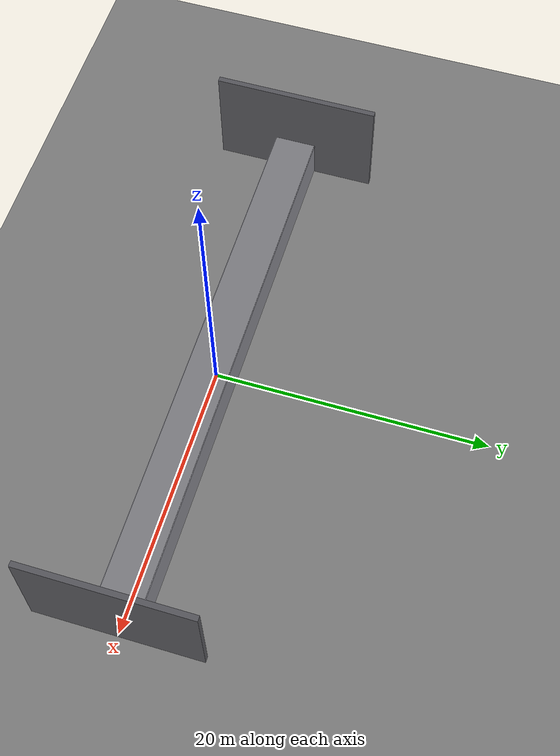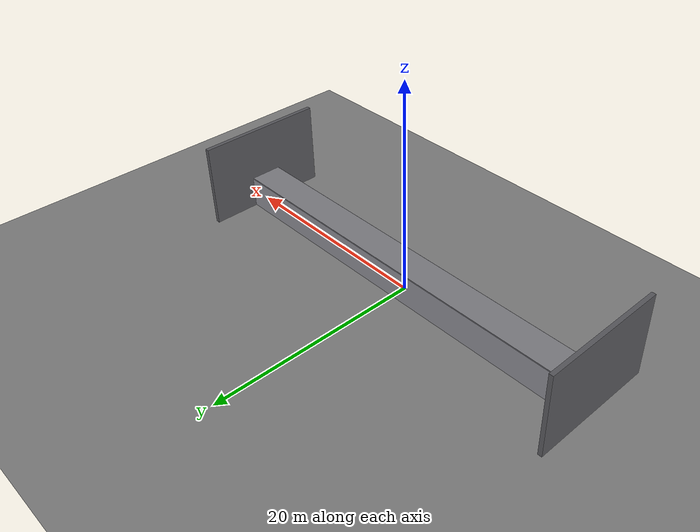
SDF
<?xml version="1.0"?>
<!--
  隧道病害巡检仿真世界
  - 简易矩形隧道走廊: 左墙 + 右墙 + 顶板, 净宽 ~2.5m, 净高 ~2.75m
  - 走廊内放置红/绿/蓝色块与圆柱, 为相机、16线雷达提供丰富特征(供后续 SLAM / 病害检测)
  - 注: 地面与阳光显式定义, 不依赖 model:// 资源路径
-->
<sdf version="1.9">
  <world name="tunnel_world">

    <physics name="default_physics" default="true" type="dart">
      <gravity>0 0 -9.8</gravity>
      <max_step_size>0.002</max_step_size>
      <real_time_factor>1</real_time_factor>
      <real_time_update_rate>500</real_time_update_rate>
    </physics>

    <scene>
      <ambient>0.6 0.6 0.6</ambient>
      <background>0.2 0.2 0.2</background>
      <shadows>true</shadows>
    </scene>

    <plugin filename="gz-sim-sensors-system" name="gz::sim::systems::Sensors">
      <render_engine>ogre2</render_engine>
    </plugin>

    <!-- 关键: world 有 Sensors 等系统插件时, gz-sim 不再自动加载默认系统集(含 Physics)。
         必须显式加 physics-system, 否则物理引擎不创建、实体静止、DiffDrive 永不发 odom。 -->
    <plugin filename="gz-sim-physics-system" name="gz::sim::systems::Physics"/>

    <!-- 太阳(方向光) -->
    <light type="directional" name="sun">
      <cast_shadows>true</cast_shadows>
      <pose>0 0 10 0 0 0</pose>
      <diffuse>0.35 0.35 0.35</diffuse>
      <specular>0.05 0.05 0.05</specular>
      <direction>-0.5 0.1 -0.9</direction>
    </light>

    <!-- 隧道内点光源: 沿隧道每 10m 一盏(z=2.4, range 16)。
         封闭隧道顶挡住太阳直射, 仅靠 scene ambient 会让墙面均匀灰、病害贴图看不清
         (v11-v13t 对比度 std 掉到 10~29 的根源)。点光源制造亮池+暗缝,
         病害 PBR 贴图才能看清。v9/v10 有这组灯, std≈40。 -->
    <light type="point" name="tunnel_light_1">
      <cast_shadows>false</cast_shadows>
      <pose>-15 0 2.4 0 0 0</pose>
      <diffuse>0.5 0.5 0.5</diffuse>
      <specular>0.05 0.05 0.05</specular>
      <attenuation>
        <range>16</range>
        <constant>1.0</constant>
        <linear>0.05</linear>
        <quadratic>0.005</quadratic>
      </attenuation>
      <intensity>1.0</intensity>
    </light>
    <light type="point" name="tunnel_light_2">
      <cast_shadows>false</cast_shadows>
      <pose>-5 0 2.4 0 0 0</pose>
      <diffuse>0.5 0.5 0.5</diffuse>
      <specular>0.05 0.05 0.05</specular>
      <attenuation>
        <range>16</range>
        <constant>1.0</constant>
        <linear>0.05</linear>
        <quadratic>0.005</quadratic>
      </attenuation>
      <intensity>1.0</intensity>
    </light>
    <light type="point" name="tunnel_light_3">
      <cast_shadows>false</cast_shadows>
      <pose>5 0 2.4 0 0 0</pose>
      <diffuse>0.5 0.5 0.5</diffuse>
      <specular>0.05 0.05 0.05</specular>
      <attenuation>
        <range>16</range>
        <constant>1.0</constant>
        <linear>0.05</linear>
        <quadratic>0.005</quadratic>
      </attenuation>
      <intensity>1.0</intensity>
    </light>
    <light type="point" name="tunnel_light_4">
      <cast_shadows>false</cast_shadows>
      <pose>15 0 2.4 0 0 0</pose>
      <diffuse>0.5 0.5 0.5</diffuse>
      <specular>0.05 0.05 0.05</specular>
      <attenuation>
        <range>16</range>
        <constant>1.0</constant>
        <linear>0.05</linear>
        <quadratic>0.005</quadratic>
      </attenuation>
      <intensity>1.0</intensity>
    </light>

    <!-- 地面 -->
    <model name="ground_plane">
      <static>true</static>
      <link name="ground">
        <collision name="ground_collision">
          <geometry>
            <plane><normal>0 0 1</normal><size>100 100</size></plane>
          </geometry>
        </collision>
        <visual name="ground_visual">
          <geometry>
            <plane><normal>0 0 1</normal><size>100 100</size></plane>
          </geometry>
          <material>
  <diffuse>0.50 0.50 0.50 1</diffuse>
  <emissive>0.08 0.08 0.08 1</emissive><ambient>0.5 0.5 0.5</ambient></material>
        </visual>
      </link>
    </model>

    <!-- ============ 隧道左墙 ============ -->
    <model name="tunnel_left_wall">
      <static>true</static>
      <pose>0 1.4 1.5 0 0 0</pose>
      <link name="wall">
        <visual name="wall_visual">
          <geometry><box><size>40 0.3 3</size></box></geometry>
          <material>
  <diffuse>0.55 0.55 0.58 1</diffuse>
  <emissive>0.09 0.09 0.09 1</emissive><ambient>0.55 0.55 0.58</ambient></material>
        </visual>
        <collision name="wall_collision">
          <geometry><box><size>40 0.3 3</size></box></geometry>
        </collision>
      </link>
    </model>

    <!-- ============ 隧道右墙 ============ -->
    <model name="tunnel_right_wall">
      <static>true</static>
      <pose>0 -1.4 1.5 0 0 0</pose>
      <link name="wall">
        <visual name="wall_visual">
          <geometry><box><size>40 0.3 3</size></box></geometry>
          <material>
  <diffuse>0.55 0.55 0.58 1</diffuse>
  <emissive>0.09 0.09 0.09 1</emissive><ambient>0.55 0.55 0.58</ambient></material>
        </visual>
        <collision name="wall_collision">
          <geometry><box><size>40 0.3 3</size></box></geometry>
        </collision>
      </link>
    </model>

    <!-- ============ 隧道顶板 (拱顶近似) ============ -->
    <model name="tunnel_ceiling">
      <static>true</static>
      <pose>0 0 2.9 0 0 0</pose>
      <link name="ceiling">
        <visual name="ceiling_visual">
          <geometry><box><size>40 3 0.3</size></box></geometry>
          <material>
  <diffuse>0.50 0.50 0.52 1</diffuse>
  <emissive>0.08 0.08 0.08 1</emissive><ambient>0.5 0.5 0.52</ambient></material>
        </visual>
        <collision name="ceiling_collision">
          <geometry><box><size>40 3 0.3</size></box></geometry>
        </collision>
      </link>
    </model>

    <!-- ============ 钢轨 (轨道病害载体, 标准轨距 1435mm, 轨顶 z≈0.15) ============ -->
    <model name="rail_left">
      <static>true</static>
      <pose>0 0.717 0.075 0 0 0</pose>
      <link name="rail">
        <visual name="visual">
          <geometry><box><size>40 0.09 0.15</size></box></geometry>
          <material>
            <diffuse>0.72 0.72 0.75 1</diffuse>
            <emissive>0.12 0.12 0.12 1</emissive>
            <ambient>0.72 0.72 0.75</ambient>
          </material>
        </visual>
        <collision name="collision">
          <geometry><box><size>40 0.09 0.15</size></box></geometry>
        </collision>
      </link>
    </model>
    <model name="rail_right">
      <static>true</static>
      <pose>0 -0.717 0.075 0 0 0</pose>
      <link name="rail">
        <visual name="visual">
          <geometry><box><size>40 0.09 0.15</size></box></geometry>
          <material>
            <diffuse>0.72 0.72 0.75 1</diffuse>
            <emissive>0.12 0.12 0.12 1</emissive>
            <ambient>0.72 0.72 0.75</ambient>
          </material>
        </visual>
        <collision name="collision">
          <geometry><box><size>40 0.09 0.15</size></box></geometry>
        </collision>
      </link>
    </model>

    <!-- ============ 隧道端墙 (封住 x=±20 开口, 避免相机看到隧道外天空致盲白屏) ============ -->
    <model name="tunnel_end_wall_far">
      <static>true</static>
      <pose>20 0 3.5 0 0 0</pose>
      <link name="wall">
        <visual name="visual">
          <geometry><box><size>0.4 12 9</size></box></geometry>
          <material>
            <diffuse>0.35 0.35 0.37 1</diffuse>
            <emissive>0.06 0.06 0.06 1</emissive>
            <ambient>0.35 0.35 0.37</ambient>
          </material>
        </visual>
        <collision name="collision">
          <geometry><box><size>0.4 12 9</size></box></geometry>
        </collision>
      </link>
    </model>
    <model name="tunnel_end_wall_near">
      <static>true</static>
      <pose>-20 0 3.5 0 0 0</pose>
      <link name="wall">
        <visual name="visual">
          <geometry><box><size>0.4 12 9</size></box></geometry>
          <material>
            <diffuse>0.35 0.35 0.37 1</diffuse>
            <emissive>0.06 0.06 0.06 1</emissive>
            <ambient>0.35 0.35 0.37</ambient>
          </material>
        </visual>
        <collision name="collision">
          <geometry><box><size>0.4 12 9</size></box></geometry>
        </collision>
      </link>
    </model>

    <!-- ============ 特征物 (SLAM / 病害检测用) ============ -->
    <model name="red_box">
      <static>true</static>
      <pose>3 0.8 0.25 0 0 0</pose>
      <link name="body">
        <visual name="visual">
          <geometry><box><size>0.8 0.8 0.5</size></box></geometry>
          <material>
  <diffuse>0.80 0.20 0.20 1</diffuse>
  <emissive>0.32 0.08 0.08 1</emissive><ambient>0.8 0.2 0.2</ambient></material>
        </visual>
        <collision name="collision">
          <geometry><box><size>0.8 0.8 0.5</size></box></geometry>
        </collision>
      </link>
    </model>

    <model name="green_box">
      <static>true</static>
      <pose>6 -0.8 0.15 0 0 0.4</pose>
      <link name="body">
        <visual name="visual">
          <geometry><box><size>0.6 0.6 0.3</size></box></geometry>
          <material>
  <diffuse>0.20 0.80 0.20 1</diffuse>
  <emissive>0.08 0.32 0.08 1</emissive><ambient>0.2 0.8 0.2</ambient></material>
        </visual>
        <collision name="collision">
          <geometry><box><size>0.6 0.6 0.3</size></box></geometry>
        </collision>
      </link>
    </model>

    <model name="blue_cylinder">
      <static>true</static>
      <pose>9 0.8 0.5 0 0 0</pose>
      <link name="body">
        <visual name="visual">
          <geometry><cylinder><radius>0.3</radius><length>1.0</length></cylinder></geometry>
          <material>
  <diffuse>0.20 0.20 0.80 1</diffuse>
  <emissive>0.08 0.08 0.32 1</emissive><ambient>0.2 0.2 0.8</ambient></material>
        </visual>
        <collision name="collision">
          <geometry><cylinder><radius>0.3</radius><length>1.0</length></cylinder></geometry>
        </collision>
      </link>
    </model>

    <model name="yellow_box">
      <static>true</static>
      <pose>12 -0.8 0.35 0 0 0.2</pose>
      <link name="body">
        <visual name="visual">
          <geometry><box><size>0.9 0.6 0.7</size></box></geometry>
          <material>
  <diffuse>0.90 0.90 0.20 1</diffuse>
  <emissive>0.36 0.36 0.08 1</emissive><ambient>0.9 0.9 0.2</ambient></material>
        </visual>
        <collision name="collision">
          <geometry><box><size>0.9 0.6 0.7</size></box></geometry>
        </collision>
      </link>
    </model>

  <model name='inspection_robot'>
    <pose>0 0 0.20 0 0 0</pose>
    <link name='base_link'>
      <inertial>
        <pose>0.0025433526011560698 0 0.018612716763005781 0 0 0</pose>
        <mass>8.6500000000000004</mass>
        <inertia>
          <ixx>0.1442233526011561</ixx>
          <ixy>0</ixy>
          <ixz>-0.001790520231213873</ixz>
          <iyy>0.20900739884393069</iyy>
          <iyz>0</iyz>
          <izz>0.22598404624277449</izz>
        </inertia>
      </inertial>
      <collision name='base_link_collision'>
        <pose>0 0 0 0 0 0</pose>
        <geometry>
          <box>
            <size>0.45000000000000001 0.34999999999999998 0.17999999999999999</size>
          </box>
        </geometry>
      </collision>
      <collision name='base_link_fixed_joint_lump__camera_link_collision_1'>
        <pose>0.22 0 0.10000000000000001 0 0 0</pose>
        <geometry>
          <box>
            <size>0.059999999999999998 0.040000000000000001 0.040000000000000001</size>
          </box>
        </geometry>
        <surface>
          <contact>
            <ode/>
          </contact>
          <friction>
            <ode/>
          </friction>
        </surface>
      </collision>
      <collision name='base_link_fixed_joint_lump__imu_link_collision_2'>
        <pose>0 0 0.02 0 0 0</pose>
        <geometry>
          <box>
            <size>0.040000000000000001 0.040000000000000001 0.02</size>
          </box>
        </geometry>
        <surface>
          <contact>
            <ode/>
          </contact>
          <friction>
            <ode/>
          </friction>
        </surface>
      </collision>
      <collision name='base_link_fixed_joint_lump__lidar_link_collision_3'>
        <pose>0 0 0.29999999999999999 0 0 0</pose>
        <geometry>
          <cylinder>
            <length>0.070000000000000007</length>
            <radius>0.050000000000000003</radius>
          </cylinder>
        </geometry>
        <surface>
          <contact>
            <ode/>
          </contact>
          <friction>
            <ode/>
          </friction>
        </surface>
      </collision>
      <visual name='base_link_visual'>
        <pose>0 0 0 0 0 0</pose>
        <geometry>
          <box>
            <size>0.45000000000000001 0.34999999999999998 0.17999999999999999</size>
          </box>
        </geometry>
        <material>
          <diffuse>0.25 0.5 1 1</diffuse>
          <ambient>0.25 0.5 1 1</ambient>
        </material>
      </visual>
      <visual name='base_link_fixed_joint_lump__camera_link_visual_1'>
        <pose>0.22 0 0.10000000000000001 0 0 0</pose>
        <geometry>
          <box>
            <size>0.059999999999999998 0.040000000000000001 0.040000000000000001</size>
          </box>
        </geometry>
        <material>
          <diffuse>1 1 0.125 1</diffuse>
          <ambient>1 1 0.125 1</ambient>
        </material>
      </visual>
      <visual name='base_link_fixed_joint_lump__imu_link_visual_2'>
        <pose>0 0 0.02 0 0 0</pose>
        <geometry>
          <box>
            <size>0.040000000000000001 0.040000000000000001 0.02</size>
          </box>
        </geometry>
        <material>
          <diffuse>0.125 1 0.25 1</diffuse>
          <ambient>0.125 1 0.25 1</ambient>
        </material>
      </visual>
      <visual name='base_link_fixed_joint_lump__lidar_link_visual_3'>
        <pose>0 0 0.29999999999999999 0 0 0</pose>
        <geometry>
          <cylinder>
            <length>0.070000000000000007</length>
            <radius>0.050000000000000003</radius>
          </cylinder>
        </geometry>
        <material>
          <diffuse>1 0.25 0.25 1</diffuse>
          <ambient>1 0.25 0.25 1</ambient>
        </material>
      </visual>
      <sensor name='camera' type='camera'>
        <always_on>true</always_on>
        <update_rate>30</update_rate>
        <topic>/camera</topic>
        <camera>
          <horizontal_fov>1.0469999999999999</horizontal_fov>
          <image>
            <width>1280</width>
            <height>720</height>
          </image>
          <clip>
            <near>0.10000000000000001</near>
            <far>50</far>
          </clip>
        </camera>
        <pose>0.22 0 0.10000000000000001 0 0 0</pose>
      </sensor>
      <sensor name='imu' type='imu'>
        <always_on>true</always_on>
        <update_rate>200</update_rate>
        <topic>/imu</topic>
        <plugin name='gz::sim::systems::Imu' filename='gz-sim-imu-system'/>
        <pose>0 0 0.02 0 0 0</pose>
        <imu/>
      </sensor>
      <sensor name='lidar' type='gpu_lidar'>
        <always_on>true</always_on>
        <update_rate>10</update_rate>
        <topic>/lidar/points</topic>
        <lidar>
          <scan>
            <horizontal>
              <samples>1800</samples>
              <resolution>1</resolution>
              <min_angle>-3.1415899999999999</min_angle>
              <max_angle>3.1415899999999999</max_angle>
            </horizontal>
            <vertical>
              <samples>16</samples>
              <resolution>1</resolution>
              <min_angle>-0.261799</min_angle>
              <max_angle>0.261799</max_angle>
            </vertical>
          </scan>
          <range>
            <min>0.20000000000000001</min>
            <max>50</max>
          </range>
        </lidar>
        <pose>0 0 0.29999999999999999 0 0 0</pose>
      </sensor>
    </link>
    <joint name='caster_front_left_swivel' type='revolute'>
      <pose relative_to='base_link'>0.16 0 -0.10000000000000001 0 0 0</pose>
      <parent>base_link</parent>
      <child>caster_front_left_shaft</child>
      <axis>
        <xyz>0 0 1</xyz>
        <limit>
          <lower>-inf</lower>
          <upper>inf</upper>
        </limit>
        <dynamics>
          <damping>0.29999999999999999</damping>
          <friction>0</friction>
          <spring_reference>0</spring_reference>
          <spring_stiffness>0</spring_stiffness>
        </dynamics>
      </axis>
    </joint>
    <link name='caster_front_left_shaft'>
      <pose relative_to='caster_front_left_swivel'>0 0 0 0 0 0</pose>
      <inertial>
        <pose>0 0 0 0 0 0</pose>
        <mass>0.080000000000000002</mass>
        <inertia>
          <ixx>0.0001</ixx>
          <ixy>0</ixy>
          <ixz>0</ixz>
          <iyy>0.0001</iyy>
          <iyz>0</iyz>
          <izz>0.0001</izz>
        </inertia>
      </inertial>
      <visual name='caster_front_left_shaft_visual'>
        <pose>0 0 0 0 0 0</pose>
        <geometry>
          <cylinder>
            <length>0.040000000000000001</length>
            <radius>0.014999999999999999</radius>
          </cylinder>
        </geometry>
        <material>
          <diffuse>0.125 0.125 0.125 1</diffuse>
          <ambient>0.125 0.125 0.125 1</ambient>
        </material>
      </visual>
    </link>
    <joint name='caster_front_left_wheel_joint' type='revolute'>
      <pose relative_to='caster_front_left_shaft'>0.040000000000000001 0 -0.059999999999999998 0 0 0</pose>
      <parent>caster_front_left_shaft</parent>
      <child>caster_front_left_wheel</child>
      <axis>
        <xyz>0 1 0</xyz>
        <limit>
          <lower>-inf</lower>
          <upper>inf</upper>
        </limit>
        <dynamics>
          <spring_reference>0</spring_reference>
          <spring_stiffness>0</spring_stiffness>
        </dynamics>
      </axis>
    </joint>
    <link name='caster_front_left_wheel'>
      <pose relative_to='caster_front_left_wheel_joint'>0 0 0 0 0 0</pose>
      <inertial>
        <pose>0 0 0 0 0 0</pose>
        <mass>0.20000000000000001</mass>
        <inertia>
          <ixx>0.00020000000000000001</ixx>
          <ixy>0</ixy>
          <ixz>0</ixz>
          <iyy>0.00020000000000000001</iyy>
          <iyz>0</iyz>
          <izz>0.00020000000000000001</izz>
        </inertia>
      </inertial>
      <collision name='caster_front_left_wheel_collision'>
        <pose>0 0 0 0 0 0</pose>
        <geometry>
          <sphere>
            <radius>0.040000000000000001</radius>
          </sphere>
        </geometry>
        <surface>
          <friction>
            <ode>
              <mu>0.29999999999999999</mu>
              <mu2>0.29999999999999999</mu2>
            </ode>
          </friction>
          <contact>
            <ode/>
          </contact>
        </surface>
      </collision>
      <visual name='caster_front_left_wheel_visual'>
        <pose>0 0 0 0 0 0</pose>
        <geometry>
          <sphere>
            <radius>0.040000000000000001</radius>
          </sphere>
        </geometry>
        <material>
          <diffuse>0.125 0.125 0.125 1</diffuse>
          <ambient>0.125 0.125 0.125 1</ambient>
        </material>
      </visual>
    </link>
    <joint name='caster_rear_right_swivel' type='revolute'>
      <pose relative_to='base_link'>-0.16 0 -0.10000000000000001 0 0 0</pose>
      <parent>base_link</parent>
      <child>caster_rear_right_shaft</child>
      <axis>
        <xyz>0 0 1</xyz>
        <limit>
          <lower>-inf</lower>
          <upper>inf</upper>
        </limit>
        <dynamics>
          <damping>0.29999999999999999</damping>
          <friction>0</friction>
          <spring_reference>0</spring_reference>
          <spring_stiffness>0</spring_stiffness>
        </dynamics>
      </axis>
    </joint>
    <link name='caster_rear_right_shaft'>
      <pose relative_to='caster_rear_right_swivel'>0 0 0 0 0 0</pose>
      <inertial>
        <pose>0 0 0 0 0 0</pose>
        <mass>0.080000000000000002</mass>
        <inertia>
          <ixx>0.0001</ixx>
          <ixy>0</ixy>
          <ixz>0</ixz>
          <iyy>0.0001</iyy>
          <iyz>0</iyz>
          <izz>0.0001</izz>
        </inertia>
      </inertial>
      <visual name='caster_rear_right_shaft_visual'>
        <pose>0 0 0 0 0 0</pose>
        <geometry>
          <cylinder>
            <length>0.040000000000000001</length>
            <radius>0.014999999999999999</radius>
          </cylinder>
        </geometry>
        <material>
          <diffuse>0.125 0.125 0.125 1</diffuse>
          <ambient>0.125 0.125 0.125 1</ambient>
        </material>
      </visual>
    </link>
    <joint name='caster_rear_right_wheel_joint' type='revolute'>
      <pose relative_to='caster_rear_right_shaft'>0.040000000000000001 0 -0.059999999999999998 0 0 0</pose>
      <parent>caster_rear_right_shaft</parent>
      <child>caster_rear_right_wheel</child>
      <axis>
        <xyz>0 1 0</xyz>
        <limit>
          <lower>-inf</lower>
          <upper>inf</upper>
        </limit>
        <dynamics>
          <spring_reference>0</spring_reference>
          <spring_stiffness>0</spring_stiffness>
        </dynamics>
      </axis>
    </joint>
    <link name='caster_rear_right_wheel'>
      <pose relative_to='caster_rear_right_wheel_joint'>0 0 0 0 0 0</pose>
      <inertial>
        <pose>0 0 0 0 0 0</pose>
        <mass>0.20000000000000001</mass>
        <inertia>
          <ixx>0.00020000000000000001</ixx>
          <ixy>0</ixy>
          <ixz>0</ixz>
          <iyy>0.00020000000000000001</iyy>
          <iyz>0</iyz>
          <izz>0.00020000000000000001</izz>
        </inertia>
      </inertial>
      <collision name='caster_rear_right_wheel_collision'>
        <pose>0 0 0 0 0 0</pose>
        <geometry>
          <sphere>
            <radius>0.040000000000000001</radius>
          </sphere>
        </geometry>
        <surface>
          <friction>
            <ode>
              <mu>0.29999999999999999</mu>
              <mu2>0.29999999999999999</mu2>
            </ode>
          </friction>
          <contact>
            <ode/>
          </contact>
        </surface>
      </collision>
      <visual name='caster_rear_right_wheel_visual'>
        <pose>0 0 0 0 0 0</pose>
        <geometry>
          <sphere>
            <radius>0.040000000000000001</radius>
          </sphere>
        </geometry>
        <material>
          <diffuse>0.125 0.125 0.125 1</diffuse>
          <ambient>0.125 0.125 0.125 1</ambient>
        </material>
      </visual>
    </link>
    <joint name='left_wheel_joint' type='revolute'>
      <pose relative_to='base_link'>0 0.20000000000000001 -0.10000000000000001 0 0 0</pose>
      <parent>base_link</parent>
      <child>left_wheel</child>
      <axis>
        <xyz>0 1 0</xyz>
        <limit>
          <effort>100</effort>
          <velocity>10</velocity>
          <lower>-inf</lower>
          <upper>inf</upper>
        </limit>
        <dynamics>
          <spring_reference>0</spring_reference>
          <spring_stiffness>0</spring_stiffness>
        </dynamics>
      </axis>
    </joint>
    <link name='left_wheel'>
      <pose relative_to='left_wheel_joint'>0 0 0 0 0 0</pose>
      <inertial>
        <pose>0 0 0 0 0 0</pose>
        <mass>0.80000000000000004</mass>
        <inertia>
          <ixx>0.0023</ixx>
          <ixy>0</ixy>
          <ixz>0</ixz>
          <iyy>0.0023</iyy>
          <iyz>0</iyz>
          <izz>0.0040000000000000001</izz>
        </inertia>
      </inertial>
      <collision name='left_wheel_collision'>
        <pose>0 0 0 1.5707963267948959 0 0</pose>
        <geometry>
          <cylinder>
            <length>0.059999999999999998</length>
            <radius>0.10000000000000001</radius>
          </cylinder>
        </geometry>
        <surface>
          <friction>
            <ode>
              <mu>1</mu>
              <mu2>1</mu2>
            </ode>
          </friction>
          <contact>
            <ode/>
          </contact>
        </surface>
      </collision>
      <visual name='left_wheel_visual'>
        <pose>0 0 0 1.5707963267948959 0 0</pose>
        <geometry>
          <cylinder>
            <length>0.059999999999999998</length>
            <radius>0.10000000000000001</radius>
          </cylinder>
        </geometry>
        <material>
          <diffuse>0.125 0.125 0.125 1</diffuse>
          <ambient>0.125 0.125 0.125 1</ambient>
        </material>
      </visual>
    </link>
    <joint name='right_wheel_joint' type='revolute'>
      <pose relative_to='base_link'>0 -0.20000000000000001 -0.10000000000000001 0 0 0</pose>
      <parent>base_link</parent>
      <child>right_wheel</child>
      <axis>
        <xyz>0 1 0</xyz>
        <limit>
          <effort>100</effort>
          <velocity>10</velocity>
          <lower>-inf</lower>
          <upper>inf</upper>
        </limit>
        <dynamics>
          <spring_reference>0</spring_reference>
          <spring_stiffness>0</spring_stiffness>
        </dynamics>
      </axis>
    </joint>
    <link name='right_wheel'>
      <pose relative_to='right_wheel_joint'>0 0 0 0 0 0</pose>
      <inertial>
        <pose>0 0 0 0 0 0</pose>
        <mass>0.80000000000000004</mass>
        <inertia>
          <ixx>0.0023</ixx>
          <ixy>0</ixy>
          <ixz>0</ixz>
          <iyy>0.0023</iyy>
          <iyz>0</iyz>
          <izz>0.0040000000000000001</izz>
        </inertia>
      </inertial>
      <collision name='right_wheel_collision'>
        <pose>0 0 0 1.5707963267948959 0 0</pose>
        <geometry>
          <cylinder>
            <length>0.059999999999999998</length>
            <radius>0.10000000000000001</radius>
          </cylinder>
        </geometry>
        <surface>
          <friction>
            <ode>
              <mu>1</mu>
              <mu2>1</mu2>
            </ode>
          </friction>
          <contact>
            <ode/>
          </contact>
        </surface>
      </collision>
      <visual name='right_wheel_visual'>
        <pose>0 0 0 1.5707963267948959 0 0</pose>
        <geometry>
          <cylinder>
            <length>0.059999999999999998</length>
            <radius>0.10000000000000001</radius>
          </cylinder>
        </geometry>
        <material>
          <diffuse>0.125 0.125 0.125 1</diffuse>
          <ambient>0.125 0.125 0.125 1</ambient>
        </material>
      </visual>
    </link>
    <plugin name='gz::sim::systems::DiffDrive' filename='gz-sim-diff-drive-system'>
      <left_joint>left_wheel_joint</left_joint>
      <right_joint>right_wheel_joint</right_joint>
      <wheel_separation>0.4</wheel_separation>
      <wheel_radius>0.1</wheel_radius>
      <odom_publish_frequency>20</odom_publish_frequency>
      <max_linear_velocity>1.0</max_linear_velocity>
      <max_angular_velocity>2.0</max_angular_velocity>
      <linear_odometry_factor>1.0</linear_odometry_factor>
    </plugin>
    <frame name='camera_joint' attached_to='base_link'>
      <pose>0.22 0 0.10000000000000001 0 0 0</pose>
    </frame>
    <frame name='camera_link' attached_to='camera_joint'>
      <pose>0 0 0 0 0 0</pose>
    </frame>
    <frame name='imu_joint' attached_to='base_link'>
      <pose>0 0 0.02 0 0 0</pose>
    </frame>
    <frame name='imu_link' attached_to='imu_joint'>
      <pose>0 0 0 0 0 0</pose>
    </frame>
    <frame name='lidar_joint' attached_to='base_link'>
      <pose>0 0 0.29999999999999999 0 0 0</pose>
    </frame>
    <frame name='lidar_link' attached_to='lidar_joint'>
      <pose>0 0 0 0 0 0</pose>
    </frame>
  </model>
  </world>
</sdf>
